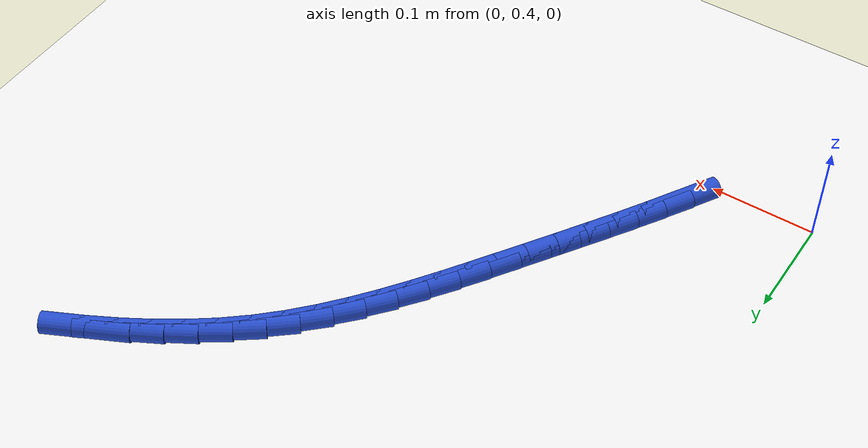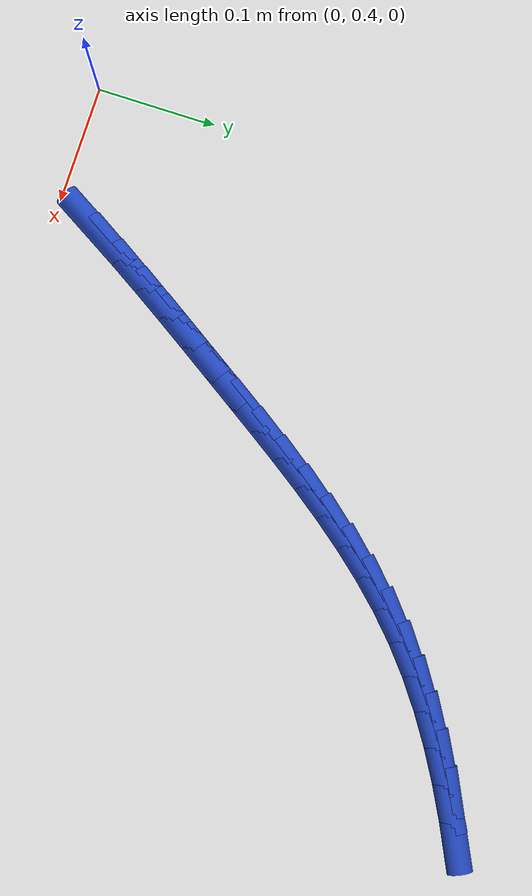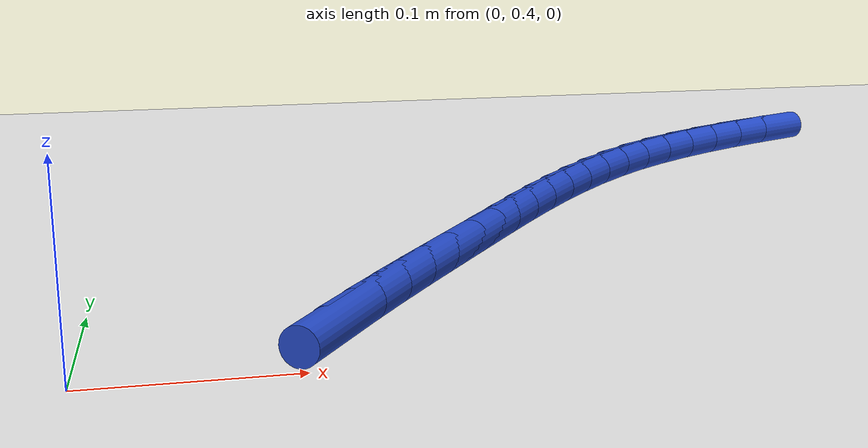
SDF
<sdf version="1.6">
 <world name="default">
  <model name="ground_plane">
   <static>1</static>
   <link name="link">
    <collision name="collision">
     <geometry><plane><normal>0 0 1</normal><size>100 100</size></plane></geometry>
     <surface><friction><ode><mu>100</mu><mu2>50</mu2></ode></friction></surface>
    </collision>
    <visual name="visual">
     <cast_shadows>0</cast_shadows>
     <geometry><plane><normal>0 0 1</normal><size>100 100</size></plane></geometry>
     <material>
      <script><uri>file://media/materials/scripts/gazebo.material</uri><name>Gazebo/WhiteGlow</name></script>
     </material>
    </visual>
   </link>
  </model>
  <model name="line">
   <link name="link_16">
    <pose>0.11658545418775122 0.440007210576528 0.01 0 1.57 1.0318452512711922</pose>
    <collision name="collision">
     <geometry><cylinder><radius>0.01</radius><length>0.08</length></cylinder></geometry>
    </collision>
    <visual name="visual">
     <material>
      <script><name>Gazebo/Blue</name><uri>file://media/materials/scripts/gazebo.material</uri></script>
     </material>
     <geometry><cylinder><radius>0.01</radius><length>0.08</length></cylinder></geometry>
    </visual>
   </link>
   <link name="link_17">
    <pose>0.1314762300676704 0.464907977924698 0.01 0 1.57 1.015843021114739</pose>
    <collision name="collision">
     <geometry><cylinder><radius>0.01</radius><length>0.08</length></cylinder></geometry>
    </collision>
    <visual name="visual">
     <material>
      <script><name>Gazebo/Blue</name><uri>file://media/materials/scripts/gazebo.material</uri></script>
     </material>
     <geometry><cylinder><radius>0.01</radius><length>0.08</length></cylinder></geometry>
    </visual>
   </link>
   <link name="link_18">
    <pose>0.14681551217858577 0.4896510992153167 0.01 0 1.57 1.0036040465947043</pose>
    <collision name="collision">
     <geometry><cylinder><radius>0.01</radius><length>0.08</length></cylinder></geometry>
    </collision>
    <visual name="visual">
     <material>
      <script><name>Gazebo/Blue</name><uri>file://media/materials/scripts/gazebo.material</uri></script>
     </material>
     <geometry><cylinder><radius>0.01</radius><length>0.08</length></cylinder></geometry>
    </visual>
   </link>
   <link name="link_19">
    <pose>0.1625036695318769 0.5142787325234376 0.01 0 1.57 0.9950768847724868</pose>
    <collision name="collision">
     <geometry><cylinder><radius>0.01</radius><length>0.08</length></cylinder></geometry>
    </collision>
    <visual name="visual">
     <material>
      <script><name>Gazebo/Blue</name><uri>file://media/materials/scripts/gazebo.material</uri></script>
     </material>
     <geometry><cylinder><radius>0.01</radius><length>0.08</length></cylinder></geometry>
    </visual>
   </link>
   <link name="link_20">
    <pose>0.17844107113892368 0.5388330359241152 0.01 0 1.57 0.9902192827280231</pose>
    <collision name="collision">
     <geometry><cylinder><radius>0.01</radius><length>0.08</length></cylinder></geometry>
    </collision>
    <visual name="visual">
     <material>
      <script><name>Gazebo/Blue</name><uri>file://media/materials/scripts/gazebo.material</uri></script>
     </material>
     <geometry><cylinder><radius>0.01</radius><length>0.08</length></cylinder></geometry>
    </visual>
   </link>
   <link name="link_21">
    <pose>0.19452808601110572 0.5633561674924035 0.01 0 1.57 0.9889718630923737</pose>
    <collision name="collision">
     <geometry><cylinder><radius>0.01</radius><length>0.08</length></cylinder></geometry>
    </collision>
    <visual name="visual">
     <material>
      <script><name>Gazebo/Blue</name><uri>file://media/materials/scripts/gazebo.material</uri></script>
     </material>
     <geometry><cylinder><radius>0.01</radius><length>0.08</length></cylinder></geometry>
    </visual>
   </link>
   <link name="link_22">
    <pose>0.21066574416968897 0.5878897171514578 0.01 0 1.57 0.9877302254870685</pose>
    <collision name="collision">
     <geometry><cylinder><radius>0.01</radius><length>0.08</length></cylinder></geometry>
    </collision>
    <visual name="visual">
     <material>
      <script><name>Gazebo/Blue</name><uri>file://media/materials/scripts/gazebo.material</uri></script>
     </material>
     <geometry><cylinder><radius>0.01</radius><length>0.08</length></cylinder></geometry>
    </visual>
   </link>
   <link name="link_23">
    <pose>0.2268356845600121 0.6124059897589027 0.01 0 1.57 0.979488176349727</pose>
    <collision name="collision">
     <geometry><cylinder><radius>0.01</radius><length>0.08</length></cylinder></geometry>
    </collision>
    <visual name="visual">
     <material>
      <script><name>Gazebo/Blue</name><uri>file://media/materials/scripts/gazebo.material</uri></script>
     </material>
     <geometry><cylinder><radius>0.01</radius><length>0.08</length></cylinder></geometry>
    </visual>
   </link>
   <link name="link_24">
    <pose>0.2431764388729019 0.6367424375579969 0.01 0 1.57 0.9633471436574087</pose>
    <collision name="collision">
     <geometry><cylinder><radius>0.01</radius><length>0.08</length></cylinder></geometry>
    </collision>
    <visual name="visual">
     <material>
      <script><name>Gazebo/Blue</name><uri>file://media/materials/scripts/gazebo.material</uri></script>
     </material>
     <geometry><cylinder><radius>0.01</radius><length>0.08</length></cylinder></geometry>
    </visual>
   </link>
   <link name="link_25">
    <pose>0.25984461206737386 0.6607209784378912 0.01 0 1.57 0.939130410757116</pose>
    <collision name="collision">
     <geometry><cylinder><radius>0.01</radius><length>0.08</length></cylinder></geometry>
    </collision>
    <visual name="visual">
     <material>
      <script><name>Gazebo/Blue</name><uri>file://media/materials/scripts/gazebo.material</uri></script>
     </material>
     <geometry><cylinder><radius>0.01</radius><length>0.08</length></cylinder></geometry>
    </visual>
   </link>
   <link name="link_26">
    <pose>0.2769968091024434 0.6841635302877371 0.01 0 1.57 0.9066050421722204</pose>
    <collision name="collision">
     <geometry><cylinder><radius>0.01</radius><length>0.08</length></cylinder></geometry>
    </collision>
    <visual name="visual">
     <material>
      <script><name>Gazebo/Blue</name><uri>file://media/materials/scripts/gazebo.material</uri></script>
     </material>
     <geometry><cylinder><radius>0.01</radius><length>0.08</length></cylinder></geometry>
    </visual>
   </link>
   <link name="link_27">
    <pose>0.29478963493712596 0.7068920109966854 0.01 0 1.57 0.8655269465596839</pose>
    <collision name="collision">
     <geometry><cylinder><radius>0.01</radius><length>0.08</length></cylinder></geometry>
    </collision>
    <visual name="visual">
     <material>
      <script><name>Gazebo/Blue</name><uri>file://media/materials/scripts/gazebo.material</uri></script>
     </material>
     <geometry><cylinder><radius>0.01</radius><length>0.08</length></cylinder></geometry>
    </visual>
   </link>
   <link name="link_28">
    <pose>0.3133796945304369 0.7287283384538873 0.01 0 1.57 0.8157087504019891</pose>
    <collision name="collision">
     <geometry><cylinder><radius>0.01</radius><length>0.08</length></cylinder></geometry>
    </collision>
    <visual name="visual">
     <material>
      <script><name>Gazebo/Blue</name><uri>file://media/materials/scripts/gazebo.material</uri></script>
     </material>
     <geometry><cylinder><radius>0.01</radius><length>0.08</length></cylinder></geometry>
    </visual>
   </link>
   <link name="link_29">
    <pose>0.3329235928413915 0.7494944305484932 0.01 0 1.57 0.757113264613779</pose>
    <collision name="collision">
     <geometry><cylinder><radius>0.01</radius><length>0.08</length></cylinder></geometry>
    </collision>
    <visual name="visual">
     <material>
      <script><name>Gazebo/Blue</name><uri>file://media/materials/scripts/gazebo.material</uri></script>
     </material>
     <geometry><cylinder><radius>0.01</radius><length>0.08</length></cylinder></geometry>
    </visual>
   </link>
   <link name="link_30">
    <pose>0.35357793482900546 0.7690122051696548 0.01 0 1.57 0.6919606716961594</pose>
    <collision name="collision">
     <geometry><cylinder><radius>0.01</radius><length>0.08</length></cylinder></geometry>
    </collision>
    <visual name="visual">
     <material>
      <script><name>Gazebo/Blue</name><uri>file://media/materials/scripts/gazebo.material</uri></script>
     </material>
     <geometry><cylinder><radius>0.01</radius><length>0.08</length></cylinder></geometry>
    </visual>
   </link>
   <link name="link_31">
    <pose>0.37545950153100616 0.7871440961339802 0.01 0 1.57 0.6302731415467031</pose>
    <collision name="collision">
     <geometry><cylinder><radius>0.01</radius><length>0.08</length></cylinder></geometry>
    </collision>
    <visual name="visual">
     <material>
      <script><name>Gazebo/Blue</name><uri>file://media/materials/scripts/gazebo.material</uri></script>
     </material>
     <geometry><cylinder><radius>0.01</radius><length>0.08</length></cylinder></geometry>
    </visual>
   </link>
   <link name="link_32">
    <pose>0.39849308690936247 0.8039478604252274 0.01 0 1.57 0.5751460501509529</pose>
    <collision name="collision">
     <geometry><cylinder><radius>0.01</radius><length>0.08</length></cylinder></geometry>
    </collision>
    <visual name="visual">
     <material>
      <script><name>Gazebo/Blue</name><uri>file://media/materials/scripts/gazebo.material</uri></script>
     </material>
     <geometry><cylinder><radius>0.01</radius><length>0.08</length></cylinder></geometry>
    </visual>
   </link>
   <link name="link_33">
    <pose>0.4225457044708449 0.8195400395128493 0.01 0 1.57 0.5265652644455167</pose>
    <collision name="collision">
     <geometry><cylinder><radius>0.01</radius><length>0.08</length></cylinder></geometry>
    </collision>
    <visual name="visual">
     <material>
      <script><name>Gazebo/Blue</name><uri>file://media/materials/scripts/gazebo.material</uri></script>
     </material>
     <geometry><cylinder><radius>0.01</radius><length>0.08</length></cylinder></geometry>
    </visual>
   </link>
   <link name="link_34">
    <pose>0.447484356172139 0.834037186617085 0.01 0 1.57 0.4843781751000266</pose>
    <collision name="collision">
     <geometry><cylinder><radius>0.01</radius><length>0.08</length></cylinder></geometry>
    </collision>
    <visual name="visual">
     <material>
      <script><name>Gazebo/Blue</name><uri>file://media/materials/scripts/gazebo.material</uri></script>
     </material>
     <geometry><cylinder><radius>0.01</radius><length>0.08</length></cylinder></geometry>
    </visual>
   </link>
   <link name="link_35">
    <pose>0.4731760439699307 0.8475558549581744 0.01 0 1.57 0.44835717572725314</pose>
    <collision name="collision">
     <geometry><cylinder><radius>0.01</radius><length>0.08</length></cylinder></geometry>
    </collision>
    <visual name="visual">
     <material>
      <script><name>Gazebo/Blue</name><uri>file://media/materials/scripts/gazebo.material</uri></script>
     </material>
     <geometry><cylinder><radius>0.01</radius><length>0.08</length></cylinder></geometry>
    </visual>
   </link>
  </model>
 </world>
</sdf>
